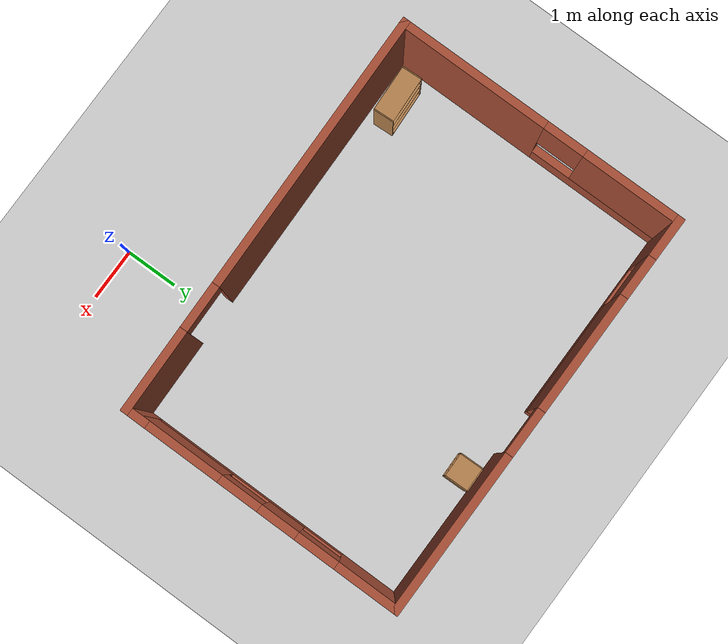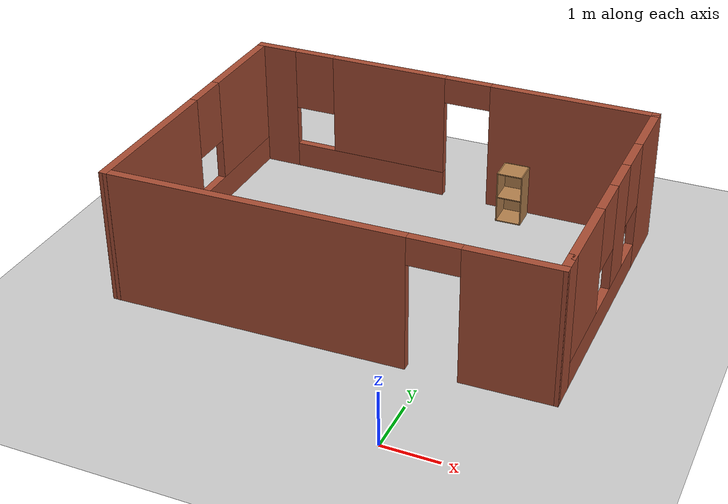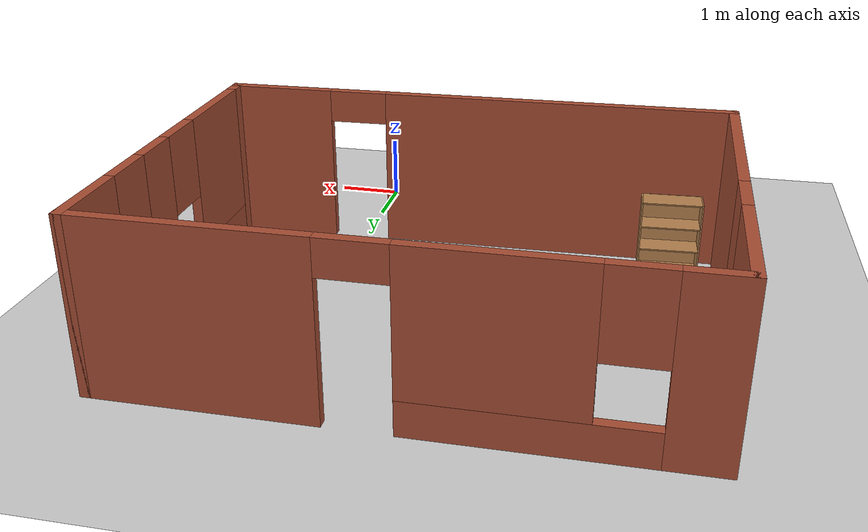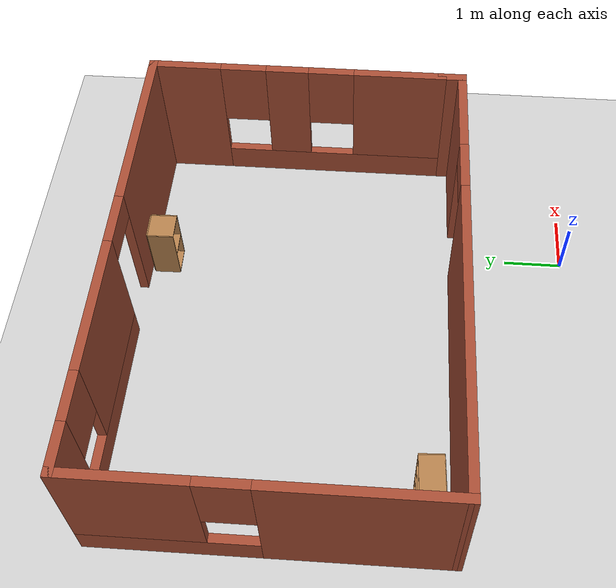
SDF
<sdf version="1.7">
 <world name="default">
  <light name="sun" type="directional">
   <pose>0 0 10 0 -0 0</pose>
   <diffuse>0.8 0.8 0.8 1</diffuse>
   <specular>0.2 0.2 0.2 1</specular>
   <attenuation>
    <range>1000</range>
    <constant>0.9</constant>
    <linear>0.01</linear>
    <quadratic>0.001</quadratic>
   </attenuation>
   <direction>-0.5 0.1 -0.9</direction>
   <spot><inner_angle>0</inner_angle><outer_angle>0</outer_angle><falloff>0</falloff></spot>
  </light>
  <model name="ground_plane">
   <static>1</static>
   <link name="link">
    <collision name="collision">
     <geometry><plane><normal>0 0 1</normal><size>100 100</size></plane></geometry>
     <surface>
      <contact><collide_bitmask>65535</collide_bitmask></contact>
      <friction><ode><mu>100</mu><mu2>50</mu2></ode></friction>
     </surface>
    </collision>
    <visual name="visual">
     <cast_shadows>0</cast_shadows>
     <geometry><plane><normal>0 0 1</normal><size>100 100</size></plane></geometry>
     <material>
      <script><uri>file://media/materials/scripts/gazebo.material</uri><name>Gazebo/Grey</name></script>
     </material>
    </visual>
   </link>
  </model>
  <gravity>0 0 -9.8</gravity>
  <magnetic_field>6e-06 2.3e-05 -4.2e-05</magnetic_field>
  <atmosphere type="adiabatic"/>
  <physics type="ode">
   <max_step_size>0.001</max_step_size>
   <real_time_factor>1</real_time_factor>
   <real_time_update_rate>1000</real_time_update_rate>
  </physics>
  <scene><ambient>0.4 0.4 0.4 1</ambient><background>0.7 0.7 0.7 1</background><shadows>1</shadows></scene>
  <audio><device>default</device></audio>
  <spherical_coordinates>
   <surface_model>EARTH_WGS84</surface_model>
   <latitude_deg>0</latitude_deg>
   <longitude_deg>0</longitude_deg>
   <elevation>0</elevation>
   <heading_deg>0</heading_deg>
  </spherical_coordinates>
  <model name="small_house">
   <pose>-1.80866 4.65559 0 0 -0 0</pose>
   <link name="Wall_0">
    <pose>-3.925 0.00071 0 0 -0 1.5708</pose>
    <visual name="Wall_0_Visual_0">
     <pose>-1.38596 0 1.25 0 -0 0</pose>
     <geometry><box><size>2.97809 0.15 2.5</size></box></geometry>
     <material>
      <script><uri>file://media/materials/scripts/gazebo.material</uri><name>Gazebo/Bricks</name></script>
      <ambient>1 1 1 1</ambient>
     </material>
     <meta><layer>0</layer></meta>
    </visual>
    <collision name="Wall_0_Collision_0">
     <geometry><box><size>2.97809 0.15 2.5</size></box></geometry>
     <pose>-1.38596 0 1.25 0 -0 0</pose>
    </collision>
    <visual name="Wall_0_Visual_1">
     <pose>1.48904 0 0.25 0 -0 0</pose>
     <geometry><box><size>2.77191 0.15 0.5</size></box></geometry>
     <material>
      <script><uri>file://media/materials/scripts/gazebo.material</uri><name>Gazebo/Bricks</name></script>
      <ambient>1 1 1 1</ambient>
     </material>
     <meta><layer>0</layer></meta>
    </visual>
    <collision name="Wall_0_Collision_1">
     <geometry><box><size>2.77191 0.15 0.5</size></box></geometry>
     <pose>1.48904 0 0.25 0 -0 0</pose>
    </collision>
    <visual name="Wall_0_Visual_2">
     <pose>1.88904 0 1.5 0 -0 0</pose>
     <geometry><box><size>1.97191 0.15 2</size></box></geometry>
     <material>
      <script><uri>file://media/materials/scripts/gazebo.material</uri><name>Gazebo/Bricks</name></script>
      <ambient>1 1 1 1</ambient>
     </material>
     <meta><layer>0</layer></meta>
    </visual>
    <collision name="Wall_0_Collision_2">
     <geometry><box><size>1.97191 0.15 2</size></box></geometry>
     <pose>1.88904 0 1.5 0 -0 0</pose>
    </collision>
    <visual name="Wall_0_Visual_3">
     <pose>0.503088 0 1.9 0 -0 0</pose>
     <geometry><box><size>0.8 0.15 1.2</size></box></geometry>
     <material>
      <script><uri>file://media/materials/scripts/gazebo.material</uri><name>Gazebo/Bricks</name></script>
      <ambient>1 1 1 1</ambient>
     </material>
     <meta><layer>0</layer></meta>
    </visual>
    <collision name="Wall_0_Collision_3">
     <geometry><box><size>0.8 0.15 1.2</size></box></geometry>
     <pose>0.503088 0 1.9 0 -0 0</pose>
    </collision>
   </link>
   <link name="Wall_1">
    <pose>0 2.80071 0 0 -0 0</pose>
    <visual name="Wall_1_Visual_0">
     <pose>-3.58574 0 1.25 0 -0 0</pose>
     <geometry><box><size>0.828513 0.15 2.5</size></box></geometry>
     <material>
      <script><uri>file://media/materials/scripts/gazebo.material</uri><name>Gazebo/Bricks</name></script>
      <ambient>1 1 1 1</ambient>
     </material>
     <meta><layer>0</layer></meta>
    </visual>
    <collision name="Wall_1_Collision_0">
     <geometry><box><size>0.828513 0.15 2.5</size></box></geometry>
     <pose>-3.58574 0 1.25 0 -0 0</pose>
    </collision>
    <visual name="Wall_1_Visual_1">
     <pose>2.41758 0 1.25 0 -0 0</pose>
     <geometry><box><size>3.16484 0.15 2.5</size></box></geometry>
     <material>
      <script><uri>file://media/materials/scripts/gazebo.material</uri><name>Gazebo/Bricks</name></script>
      <ambient>1 1 1 1</ambient>
     </material>
     <meta><layer>0</layer></meta>
    </visual>
    <collision name="Wall_1_Collision_1">
     <geometry><box><size>3.16484 0.15 2.5</size></box></geometry>
     <pose>2.41758 0 1.25 0 -0 0</pose>
    </collision>
    <visual name="Wall_1_Visual_2">
     <pose>-1.61816 0 0.25 0 -0 0</pose>
     <geometry><box><size>3.10665 0.15 0.5</size></box></geometry>
     <material>
      <script><uri>file://media/materials/scripts/gazebo.material</uri><name>Gazebo/Bricks</name></script>
      <ambient>1 1 1 1</ambient>
     </material>
     <meta><layer>0</layer></meta>
    </visual>
    <collision name="Wall_1_Collision_2">
     <geometry><box><size>3.10665 0.15 0.5</size></box></geometry>
     <pose>-1.61816 0 0.25 0 -0 0</pose>
    </collision>
    <visual name="Wall_1_Visual_3">
     <pose>-1.21816 0 1.5 0 -0 0</pose>
     <geometry><box><size>2.30665 0.15 2</size></box></geometry>
     <material>
      <script><uri>file://media/materials/scripts/gazebo.material</uri><name>Gazebo/Bricks</name></script>
      <ambient>1 1 1 1</ambient>
     </material>
     <meta><layer>0</layer></meta>
    </visual>
    <collision name="Wall_1_Collision_3">
     <geometry><box><size>2.30665 0.15 2</size></box></geometry>
     <pose>-1.21816 0 1.5 0 -0 0</pose>
    </collision>
    <visual name="Wall_1_Visual_4">
     <pose>-2.77149 0 1.9 0 -0 0</pose>
     <geometry><box><size>0.8 0.15 1.2</size></box></geometry>
     <material>
      <script><uri>file://media/materials/scripts/gazebo.material</uri><name>Gazebo/Bricks</name></script>
      <ambient>1 1 1 1</ambient>
     </material>
     <meta><layer>0</layer></meta>
    </visual>
    <collision name="Wall_1_Collision_4">
     <geometry><box><size>0.8 0.15 1.2</size></box></geometry>
     <pose>-2.77149 0 1.9 0 -0 0</pose>
    </collision>
    <visual name="Wall_1_Visual_5">
     <pose>0.385161 0 2.25 0 -0 0</pose>
     <geometry><box><size>0.9 0.15 0.5</size></box></geometry>
     <material>
      <script><uri>file://media/materials/scripts/gazebo.material</uri><name>Gazebo/Bricks</name></script>
      <ambient>1 1 1 1</ambient>
     </material>
     <meta><layer>0</layer></meta>
    </visual>
    <collision name="Wall_1_Collision_5">
     <geometry><box><size>0.9 0.15 0.5</size></box></geometry>
     <pose>0.385161 0 2.25 0 -0 0</pose>
    </collision>
   </link>
   <link name="Wall_2">
    <pose>3.925 0.25071 0 0 -0 -1.5708</pose>
    <visual name="Wall_2_Visual_0">
     <pose>-1.98681 0 1.25 0 -0 0</pose>
     <geometry><box><size>1.27638 0.15 2.5</size></box></geometry>
     <material>
      <script><uri>file://media/materials/scripts/gazebo.material</uri><name>Gazebo/Bricks</name></script>
      <ambient>1 1 1 1</ambient>
     </material>
     <meta><layer>0</layer></meta>
    </visual>
    <collision name="Wall_2_Collision_0">
     <geometry><box><size>1.27638 0.15 2.5</size></box></geometry>
     <pose>-1.98681 0 1.25 0 -0 0</pose>
    </collision>
    <visual name="Wall_2_Visual_1">
     <pose>0.63819 0 0.25 0 -0 0</pose>
     <geometry><box><size>3.97362 0.15 0.5</size></box></geometry>
     <material>
      <script><uri>file://media/materials/scripts/gazebo.material</uri><name>Gazebo/Bricks</name></script>
      <ambient>1 1 1 1</ambient>
     </material>
     <meta><layer>0</layer></meta>
    </visual>
    <collision name="Wall_2_Collision_1">
     <geometry><box><size>3.97362 0.15 0.5</size></box></geometry>
     <pose>0.63819 0 0.25 0 -0 0</pose>
    </collision>
    <visual name="Wall_2_Visual_2">
     <pose>-0.172834 0 1.5 0 -0 0</pose>
     <geometry><box><size>0.751573 0.15 2</size></box></geometry>
     <material>
      <script><uri>file://media/materials/scripts/gazebo.material</uri><name>Gazebo/Bricks</name></script>
      <ambient>1 1 1 1</ambient>
     </material>
     <meta><layer>0</layer></meta>
    </visual>
    <collision name="Wall_2_Collision_2">
     <geometry><box><size>0.751573 0.15 2</size></box></geometry>
     <pose>-0.172834 0 1.5 0 -0 0</pose>
    </collision>
    <visual name="Wall_2_Visual_3">
     <pose>1.81398 0 1.5 0 -0 0</pose>
     <geometry><box><size>1.62205 0.15 2</size></box></geometry>
     <material>
      <script><uri>file://media/materials/scripts/gazebo.material</uri><name>Gazebo/Bricks</name></script>
      <ambient>1 1 1 1</ambient>
     </material>
     <meta><layer>0</layer></meta>
    </visual>
    <collision name="Wall_2_Collision_3">
     <geometry><box><size>1.62205 0.15 2</size></box></geometry>
     <pose>1.81398 0 1.5 0 -0 0</pose>
    </collision>
    <visual name="Wall_2_Visual_4">
     <pose>-0.94862 0 1.9 0 -0 0</pose>
     <geometry><box><size>0.8 0.15 1.2</size></box></geometry>
     <material>
      <script><uri>file://media/materials/scripts/gazebo.material</uri><name>Gazebo/Bricks</name></script>
      <ambient>1 1 1 1</ambient>
     </material>
     <meta><layer>0</layer></meta>
    </visual>
    <collision name="Wall_2_Collision_4">
     <geometry><box><size>0.8 0.15 1.2</size></box></geometry>
     <pose>-0.94862 0 1.9 0 -0 0</pose>
    </collision>
    <visual name="Wall_2_Visual_5">
     <pose>0.602952 0 1.9 0 -0 0</pose>
     <geometry><box><size>0.8 0.15 1.2</size></box></geometry>
     <material>
      <script><uri>file://media/materials/scripts/gazebo.material</uri><name>Gazebo/Bricks</name></script>
      <ambient>1 1 1 1</ambient>
     </material>
     <meta><layer>0</layer></meta>
    </visual>
    <collision name="Wall_2_Collision_5">
     <geometry><box><size>0.8 0.15 1.2</size></box></geometry>
     <pose>0.602952 0 1.9 0 -0 0</pose>
    </collision>
   </link>
   <link name="Wall_3">
    <collision name="Wall_3_Collision">
     <geometry><box><size>0.5 0.15 2.5</size></box></geometry>
     <pose>0 0 1.25 0 -0 0</pose>
    </collision>
    <visual name="Wall_3_Visual">
     <pose>0 0 1.25 0 -0 0</pose>
     <geometry><box><size>0.5 0.15 2.5</size></box></geometry>
     <material>
      <script><uri>file://media/materials/scripts/gazebo.material</uri><name>Gazebo/Bricks</name></script>
      <ambient>1 1 1 1</ambient>
     </material>
     <meta><layer>0</layer></meta>
    </visual>
    <pose>3.925 -2.47429 0 0 -0 -1.5708</pose>
   </link>
   <link name="Wall_4">
    <pose>0 -2.72429 0 0 -0 -3.12249</pose>
    <visual name="Wall_4_Visual_0">
     <pose>-3.16697 0 1.25 0 -0 0</pose>
     <geometry><box><size>1.66749 0.15 2.5</size></box></geometry>
     <material>
      <script><uri>file://media/materials/scripts/gazebo.material</uri><name>Gazebo/Bricks</name></script>
      <ambient>1 1 1 1</ambient>
     </material>
     <meta><layer>0</layer></meta>
    </visual>
    <collision name="Wall_4_Collision_0">
     <geometry><box><size>1.66749 0.15 2.5</size></box></geometry>
     <pose>-3.16697 0 1.25 0 -0 0</pose>
    </collision>
    <visual name="Wall_4_Visual_1">
     <pose>1.28374 0 1.25 0 -0 0</pose>
     <geometry><box><size>5.43395 0.15 2.5</size></box></geometry>
     <material>
      <script><uri>file://media/materials/scripts/gazebo.material</uri><name>Gazebo/Bricks</name></script>
      <ambient>1 1 1 1</ambient>
     </material>
     <meta><layer>0</layer></meta>
    </visual>
    <collision name="Wall_4_Collision_1">
     <geometry><box><size>5.43395 0.15 2.5</size></box></geometry>
     <pose>1.28374 0 1.25 0 -0 0</pose>
    </collision>
    <visual name="Wall_4_Visual_2">
     <pose>-1.88323 0 2.25 0 -0 0</pose>
     <geometry><box><size>0.9 0.15 0.5</size></box></geometry>
     <material>
      <script><uri>file://media/materials/scripts/gazebo.material</uri><name>Gazebo/Bricks</name></script>
      <ambient>1 1 1 1</ambient>
     </material>
     <meta><layer>0</layer></meta>
    </visual>
    <collision name="Wall_4_Collision_2">
     <geometry><box><size>0.9 0.15 0.5</size></box></geometry>
     <pose>-1.88323 0 2.25 0 -0 0</pose>
    </collision>
   </link>
   <static>1</static>
  </model>
  <model name="bookshelf">
   <static>1</static>
   <link name="link">
    <inertial><mass>1</mass></inertial>
    <collision name="back">
     <pose>0 0.005 0.6 0 -0 0</pose>
     <geometry><box><size>0.9 0.01 1.2</size></box></geometry>
    </collision>
    <visual name="visual1">
     <pose>0 0.005 0.6 0 -0 0</pose>
     <geometry><box><size>0.9 0.01 1.2</size></box></geometry>
     <material>
      <script><uri>file://media/materials/scripts/gazebo.material</uri><name>Gazebo/Wood</name></script>
     </material>
    </visual>
    <collision name="left_side">
     <pose>0.45 -0.195 0.6 0 -0 0</pose>
     <geometry><box><size>0.02 0.4 1.2</size></box></geometry>
    </collision>
    <visual name="visual2">
     <pose>0.45 -0.195 0.6 0 -0 0</pose>
     <geometry><box><size>0.02 0.4 1.2</size></box></geometry>
     <material>
      <script><uri>file://media/materials/scripts/gazebo.material</uri><name>Gazebo/Wood</name></script>
     </material>
    </visual>
    <collision name="right_side">
     <pose>-0.45 -0.195 0.6 0 -0 0</pose>
     <geometry><box><size>0.02 0.4 1.2</size></box></geometry>
    </collision>
    <visual name="visual3">
     <pose>-0.45 -0.195 0.6 0 -0 0</pose>
     <geometry><box><size>0.02 0.4 1.2</size></box></geometry>
     <material>
      <script><uri>file://media/materials/scripts/gazebo.material</uri><name>Gazebo/Wood</name></script>
     </material>
    </visual>
    <collision name="bottom">
     <pose>0 -0.195 0.03 0 -0 0</pose>
     <geometry><box><size>0.88 0.4 0.06</size></box></geometry>
    </collision>
    <visual name="visual4">
     <pose>0 -0.195 0.03 0 -0 0</pose>
     <geometry><box><size>0.88 0.4 0.06</size></box></geometry>
     <material>
      <script><uri>file://media/materials/scripts/gazebo.material</uri><name>Gazebo/Wood</name></script>
     </material>
    </visual>
    <collision name="top">
     <pose>0 -0.195 1.19 0 -0 0</pose>
     <geometry><box><size>0.88 0.4 0.02</size></box></geometry>
    </collision>
    <visual name="visual5">
     <pose>0 -0.195 1.19 0 -0 0</pose>
     <geometry><box><size>0.88 0.4 0.02</size></box></geometry>
     <material>
      <script><uri>file://media/materials/scripts/gazebo.material</uri><name>Gazebo/Wood</name></script>
     </material>
    </visual>
    <collision name="low_shelf">
     <pose>0 -0.195 0.43 0 -0 0</pose>
     <geometry><box><size>0.88 0.4 0.02</size></box></geometry>
    </collision>
    <visual name="visual6">
     <pose>0 -0.195 0.43 0 -0 0</pose>
     <geometry><box><size>0.88 0.4 0.02</size></box></geometry>
     <material>
      <script><uri>file://media/materials/scripts/gazebo.material</uri><name>Gazebo/Wood</name></script>
     </material>
    </visual>
    <collision name="high_shelf">
     <pose>0 -0.195 0.8 0 -0 0</pose>
     <geometry><box><size>0.88 0.4 0.02</size></box></geometry>
    </collision>
    <visual name="visual7">
     <pose>0 -0.195 0.8 0 -0 0</pose>
     <geometry><box><size>0.88 0.4 0.02</size></box></geometry>
     <material>
      <script><uri>file://media/materials/scripts/gazebo.material</uri><name>Gazebo/Wood</name></script>
     </material>
    </visual>
   </link>
   <pose>-4.94457 2.12236 0 0 0 -3.09083</pose>
  </model>
  <model name="cabinet">
   <static>1</static>
   <link name="cabinet_bottom_plate">
    <inertial>
     <pose>0 0 -1 0 -0 0</pose>
     <inertia><ixx>2.05</ixx><ixy>0</ixy><ixz>0</ixz><iyy>2.05</iyy><iyz>0</iyz><izz>2.05</izz></inertia>
     <mass>25</mass>
    </inertial>
    <collision name="cabinet_bottom_plate_geom">
     <pose>0 0 0.01 0 -0 0</pose>
     <geometry><box><size>0.45 0.45 0.02</size></box></geometry>
    </collision>
    <visual name="cabinet_bottom_plate_geom_visual">
     <pose>0 0 0.01 0 -0 0</pose>
     <geometry><box><size>0.45 0.45 0.02</size></box></geometry>
     <material>
      <script><uri>file://media/materials/scripts/gazebo.material</uri><name>Gazebo/Wood</name></script>
     </material>
    </visual>
    <collision name="cabinet_bottom_plate_geom_cabinet_back_plate">
     <pose>0.235 0 0.51 0 -0 0</pose>
     <geometry><box><size>0.02 0.45 1.02</size></box></geometry>
    </collision>
    <visual name="cabinet_bottom_plate_geom_cabinet_back_plate_visual">
     <pose>0.235 0 0.51 0 -0 0</pose>
     <geometry><box><size>0.02 0.45 1.02</size></box></geometry>
     <material>
      <script><uri>file://media/materials/scripts/gazebo.material</uri><name>Gazebo/Wood</name></script>
     </material>
    </visual>
    <collision name="cabinet_bottom_plate_geom_cabinet_left_plate">
     <pose>0 0.235 0.51 0 -0 0</pose>
     <geometry><box><size>0.45 0.02 1.02</size></box></geometry>
    </collision>
    <visual name="cabinet_bottom_plate_geom_cabinet_left_plate_visual">
     <pose>0 0.235 0.51 0 -0 0</pose>
     <geometry><box><size>0.45 0.02 1.02</size></box></geometry>
     <material>
      <script><uri>file://media/materials/scripts/gazebo.material</uri><name>Gazebo/Wood</name></script>
     </material>
    </visual>
    <collision name="cabinet_bottom_plate_geom_cabinet_middle_plate">
     <pose>0 0 0.51 0 -0 0</pose>
     <geometry><box><size>0.45 0.45 0.02</size></box></geometry>
    </collision>
    <visual name="cabinet_bottom_plate_geom_cabinet_middle_plate_visual">
     <pose>0 0 0.51 0 -0 0</pose>
     <geometry><box><size>0.45 0.45 0.02</size></box></geometry>
     <material>
      <script><uri>file://media/materials/scripts/gazebo.material</uri><name>Gazebo/Wood</name></script>
     </material>
    </visual>
    <collision name="cabinet_bottom_plate_geom_cabinet_right_plate">
     <pose>0 -0.235 0.51 0 -0 0</pose>
     <geometry><box><size>0.45 0.02 1.02</size></box></geometry>
    </collision>
    <visual name="cabinet_bottom_plate_geom_cabinet_right_plate_visual">
     <pose>0 -0.235 0.51 0 -0 0</pose>
     <geometry><box><size>0.45 0.02 1.02</size></box></geometry>
     <material>
      <script><uri>file://media/materials/scripts/gazebo.material</uri><name>Gazebo/Wood</name></script>
     </material>
    </visual>
    <collision name="cabinet_bottom_plate_geom_cabinet_top_plate">
     <pose>0 0 1.01 0 -0 0</pose>
     <geometry><box><size>0.45 0.45 0.02</size></box></geometry>
    </collision>
    <visual name="cabinet_bottom_plate_geom_cabinet_top_plate_visual">
     <pose>0 0 1.01 0 -0 0</pose>
     <geometry><box><size>0.45 0.45 0.02</size></box></geometry>
     <material>
      <script><uri>file://media/materials/scripts/gazebo.material</uri><name>Gazebo/Wood</name></script>
     </material>
    </visual>
   </link>
   <pose>-0.355818 7.09642 0 0 -0 1.58925</pose>
  </model>
 </world>
</sdf>
